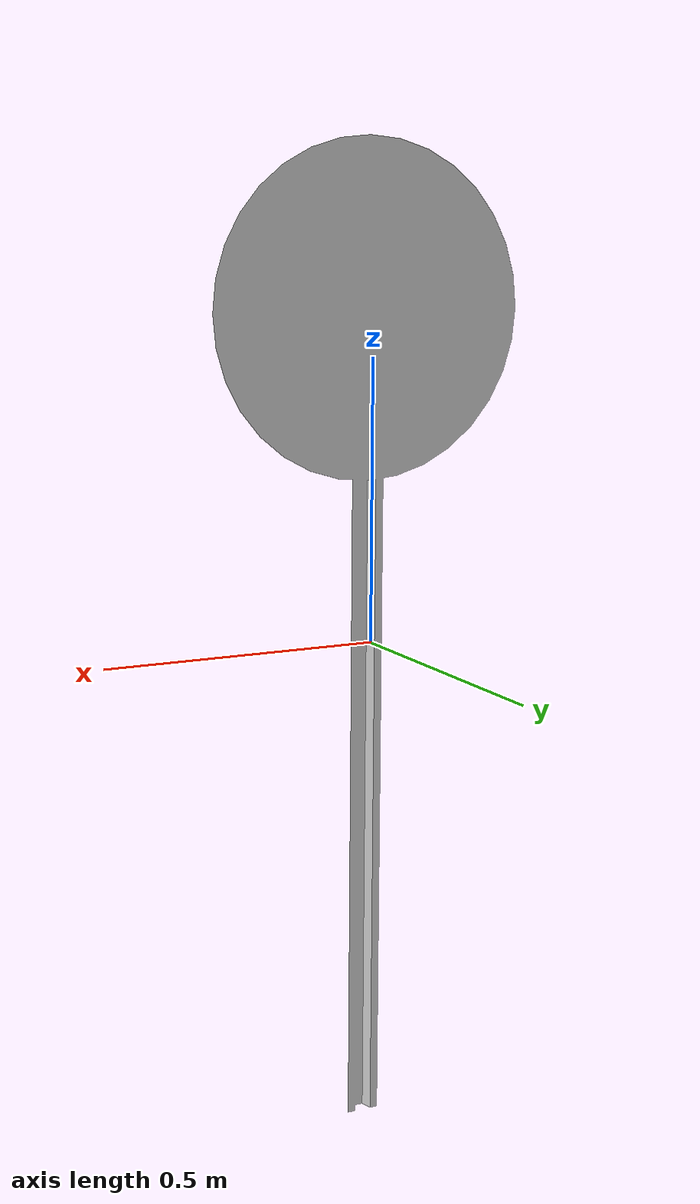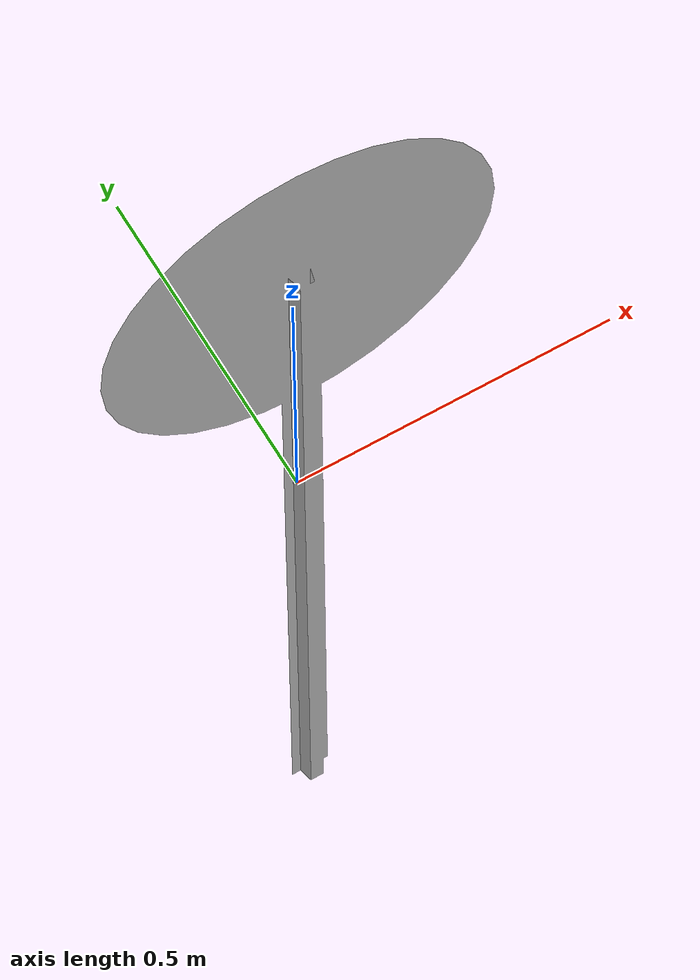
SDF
<?xml version="1.0" ?>
<sdf version="1.5">
  <model name="Speed limit">
    <static>true</static>
    <link name="link">
      <collision name="collision">
        <pose> 0 0 -0.9 0 0 0 </pose>
        <geometry>
          <mesh>
            <scale>7.5 7.5 7.5</scale>
            <uri>model://speed_limit_sign/meshes/speed_limit_sign.dae</uri>
          </mesh>
        </geometry>
      </collision>
      <visual name="visual">
        <pose> 0 0 -0.9 0 0 0 </pose>
        <geometry>
          <mesh>
            <scale>7.5 7.5 7.5</scale>
            <uri>model://speed_limit_sign/meshes/speed_limit_sign.dae</uri>
          </mesh>
        </geometry>
      </visual>
    </link>
  </model>
</sdf>
